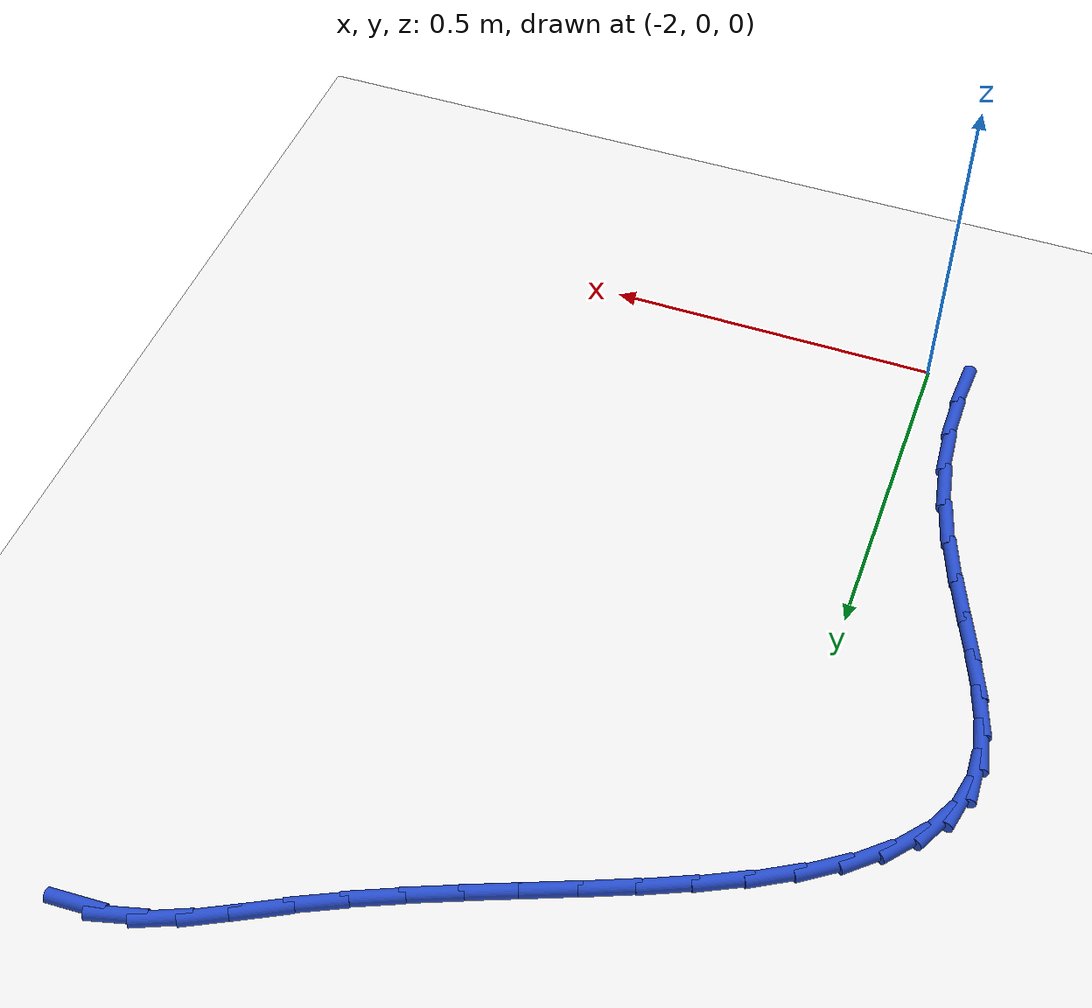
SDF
<sdf version="1.6">
 <world name="default">
  <model name="ground_plane">
   <static>1</static>
   <link name="link">
    <collision name="collision">
     <geometry><plane><normal>0 0 1</normal><size>100 100</size></plane></geometry>
     <surface><friction><ode><mu>100</mu><mu2>50</mu2></ode></friction></surface>
    </collision>
    <visual name="visual">
     <cast_shadows>0</cast_shadows>
     <geometry><plane><normal>0 0 1</normal><size>100 100</size></plane></geometry>
     <material>
      <script><uri>file://media/materials/scripts/gazebo.material</uri><name>Gazebo/WhiteGlow</name></script>
     </material>
    </visual>
   </link>
  </model>
  <model name="line">
   <link name="link_30">
    <pose>-1.2269145737048337 1.2487892684558908 0.01 0 1.57 0.05732866076477061</pose>
    <collision name="collision">
     <geometry><cylinder><radius>0.01</radius><length>0.08</length></cylinder></geometry>
    </collision>
    <visual name="visual">
     <material>
      <script><name>Gazebo/Blue</name><uri>file://media/materials/scripts/gazebo.material</uri></script>
     </material>
     <geometry><cylinder><radius>0.01</radius><length>0.08</length></cylinder></geometry>
    </visual>
   </link>
   <link name="link_31">
    <pose>-1.2802985207606725 1.2457254810731706 0.01 0 1.57 0.26910395399730286</pose>
    <collision name="collision">
     <geometry><cylinder><radius>0.01</radius><length>0.08</length></cylinder></geometry>
    </collision>
    <visual name="visual">
     <material>
      <script><name>Gazebo/Blue</name><uri>file://media/materials/scripts/gazebo.material</uri></script>
     </material>
     <geometry><cylinder><radius>0.01</radius><length>0.08</length></cylinder></geometry>
    </visual>
   </link>
   <link name="link_32">
    <pose>-1.3336327717868481 1.231016230854938 0.01 0 1.57 0.41300346229837676</pose>
    <collision name="collision">
     <geometry><cylinder><radius>0.01</radius><length>0.08</length></cylinder></geometry>
    </collision>
    <visual name="visual">
     <material>
      <script><name>Gazebo/Blue</name><uri>file://media/materials/scripts/gazebo.material</uri></script>
     </material>
     <geometry><cylinder><radius>0.01</radius><length>0.08</length></cylinder></geometry>
    </visual>
   </link>
   <link name="link_33">
    <pose>-1.3877844879776056 1.2072865853534835 0.01 0 1.57 0.48141193044094316</pose>
    <collision name="collision">
     <geometry><cylinder><radius>0.01</radius><length>0.08</length></cylinder></geometry>
    </collision>
    <visual name="visual">
     <material>
      <script><name>Gazebo/Blue</name><uri>file://media/materials/scripts/gazebo.material</uri></script>
     </material>
     <geometry><cylinder><radius>0.01</radius><length>0.08</length></cylinder></geometry>
    </visual>
   </link>
   <link name="link_34">
    <pose>-1.4438005196532282 1.1780234306486186 0.01 0 1.57 0.48839619299346027</pose>
    <collision name="collision">
     <geometry><cylinder><radius>0.01</radius><length>0.08</length></cylinder></geometry>
    </collision>
    <visual name="visual">
     <material>
      <script><name>Gazebo/Blue</name><uri>file://media/materials/scripts/gazebo.material</uri></script>
     </material>
     <geometry><cylinder><radius>0.01</radius><length>0.08</length></cylinder></geometry>
    </visual>
   </link>
   <link name="link_35">
    <pose>-1.5027277173468385 1.1467136538409626 0.01 0 1.57 0.45230389633374424</pose>
    <collision name="collision">
     <geometry><cylinder><radius>0.01</radius><length>0.08</length></cylinder></geometry>
    </collision>
    <visual name="visual">
     <material>
      <script><name>Gazebo/Blue</name><uri>file://media/materials/scripts/gazebo.material</uri></script>
     </material>
     <geometry><cylinder><radius>0.01</radius><length>0.08</length></cylinder></geometry>
    </visual>
   </link>
   <link name="link_36">
    <pose>-1.5653066440749752 1.1163065702985682 0.01 0 1.57 0.4184415488278547</pose>
    <collision name="collision">
     <geometry><cylinder><radius>0.01</radius><length>0.08</length></cylinder></geometry>
    </collision>
    <visual name="visual">
     <material>
      <script><name>Gazebo/Blue</name><uri>file://media/materials/scripts/gazebo.material</uri></script>
     </material>
     <geometry><cylinder><radius>0.01</radius><length>0.08</length></cylinder></geometry>
    </visual>
   </link>
   <link name="link_37">
    <pose>-1.6308107767704272 1.0871765814110361 0.01 0 1.57 0.3975980474690514</pose>
    <collision name="collision">
     <geometry><cylinder><radius>0.01</radius><length>0.08</length></cylinder></geometry>
    </collision>
    <visual name="visual">
     <material>
      <script><name>Gazebo/Blue</name><uri>file://media/materials/scripts/gazebo.material</uri></script>
     </material>
     <geometry><cylinder><radius>0.01</radius><length>0.08</length></cylinder></geometry>
    </visual>
   </link>
   <link name="link_38">
    <pose>-1.6980748488820894 1.0589280405509232 0.01 0 1.57 0.3883504754166668</pose>
    <collision name="collision">
     <geometry><cylinder><radius>0.01</radius><length>0.08</length></cylinder></geometry>
    </collision>
    <visual name="visual">
     <material>
      <script><name>Gazebo/Blue</name><uri>file://media/materials/scripts/gazebo.material</uri></script>
     </material>
     <geometry><cylinder><radius>0.01</radius><length>0.08</length></cylinder></geometry>
    </visual>
   </link>
   <link name="link_39">
    <pose>-1.7659335144301365 1.0311651616837485 0.01 0 1.57 0.3901776633378086</pose>
    <collision name="collision">
     <geometry><cylinder><radius>0.01</radius><length>0.08</length></cylinder></geometry>
    </collision>
    <visual name="visual">
     <material>
      <script><name>Gazebo/Blue</name><uri>file://media/materials/scripts/gazebo.material</uri></script>
     </material>
     <geometry><cylinder><radius>0.01</radius><length>0.08</length></cylinder></geometry>
    </visual>
   </link>
   <link name="link_40">
    <pose>-1.8332214274347414 1.003492158775032 0.01 0 1.57 0.40341232277559597</pose>
    <collision name="collision">
     <geometry><cylinder><radius>0.01</radius><length>0.08</length></cylinder></geometry>
    </collision>
    <visual name="visual">
     <material>
      <script><name>Gazebo/Blue</name><uri>file://media/materials/scripts/gazebo.material</uri></script>
     </material>
     <geometry><cylinder><radius>0.01</radius><length>0.08</length></cylinder></geometry>
    </visual>
   </link>
   <link name="link_41">
    <pose>-1.89877324191608 0.9755132457902925 0.01 0 1.57 0.42931180720907325</pose>
    <collision name="collision">
     <geometry><cylinder><radius>0.01</radius><length>0.08</length></cylinder></geometry>
    </collision>
    <visual name="visual">
     <material>
      <script><name>Gazebo/Blue</name><uri>file://media/materials/scripts/gazebo.material</uri></script>
     </material>
     <geometry><cylinder><radius>0.01</radius><length>0.08</length></cylinder></geometry>
    </visual>
   </link>
   <link name="link_42">
    <pose>-1.9614236118943258 0.9468326366950504 0.01 0 1.57 0.47026632434651217</pose>
    <collision name="collision">
     <geometry><cylinder><radius>0.01</radius><length>0.08</length></cylinder></geometry>
    </collision>
    <visual name="visual">
     <material>
      <script><name>Gazebo/Blue</name><uri>file://media/materials/scripts/gazebo.material</uri></script>
     </material>
     <geometry><cylinder><radius>0.01</radius><length>0.08</length></cylinder></geometry>
    </visual>
   </link>
   <link name="link_43">
    <pose>-2.020007191389654 0.9170545454548245 0.01 0 1.57 0.5301652108504594</pose>
    <collision name="collision">
     <geometry><cylinder><radius>0.01</radius><length>0.08</length></cylinder></geometry>
    </collision>
    <visual name="visual">
     <material>
      <script><name>Gazebo/Blue</name><uri>file://media/materials/scripts/gazebo.material</uri></script>
     </material>
     <geometry><cylinder><radius>0.01</radius><length>0.08</length></cylinder></geometry>
    </visual>
   </link>
   <link name="link_44">
    <pose>-2.0733586344222372 0.8857831860351344 0.01 0 1.57 0.6148966236918322</pose>
    <collision name="collision">
     <geometry><cylinder><radius>0.01</radius><length>0.08</length></cylinder></geometry>
    </collision>
    <visual name="visual">
     <material>
      <script><name>Gazebo/Blue</name><uri>file://media/materials/scripts/gazebo.material</uri></script>
     </material>
     <geometry><cylinder><radius>0.01</radius><length>0.08</length></cylinder></geometry>
    </visual>
   </link>
   <link name="link_45">
    <pose>-2.1203125950122517 0.8526227724014999 0.01 0 1.57 0.7327202092038974</pose>
    <collision name="collision">
     <geometry><cylinder><radius>0.01</radius><length>0.08</length></cylinder></geometry>
    </collision>
    <visual name="visual">
     <material>
      <script><name>Gazebo/Blue</name><uri>file://media/materials/scripts/gazebo.material</uri></script>
     </material>
     <geometry><cylinder><radius>0.01</radius><length>0.08</length></cylinder></geometry>
    </visual>
   </link>
   <link name="link_46">
    <pose>-2.1597037271798705 0.8171775185194404 0.01 0 1.57 0.8934658060357494</pose>
    <collision name="collision">
     <geometry><cylinder><radius>0.01</radius><length>0.08</length></cylinder></geometry>
    </collision>
    <visual name="visual">
     <material>
      <script><name>Gazebo/Blue</name><uri>file://media/materials/scripts/gazebo.material</uri></script>
     </material>
     <geometry><cylinder><radius>0.01</radius><length>0.08</length></cylinder></geometry>
    </visual>
   </link>
   <link name="link_47">
    <pose>-2.190366684945269 0.779051638354475 0.01 0 1.57 1.1038864519380231</pose>
    <collision name="collision">
     <geometry><cylinder><radius>0.01</radius><length>0.08</length></cylinder></geometry>
    </collision>
    <visual name="visual">
     <material>
      <script><name>Gazebo/Blue</name><uri>file://media/materials/scripts/gazebo.material</uri></script>
     </material>
     <geometry><cylinder><radius>0.01</radius><length>0.08</length></cylinder></geometry>
    </visual>
   </link>
   <link name="link_48">
    <pose>-2.211136122328621 0.7378493458721235 0.01 0 1.57 1.3567133856110043</pose>
    <collision name="collision">
     <geometry><cylinder><radius>0.01</radius><length>0.08</length></cylinder></geometry>
    </collision>
    <visual name="visual">
     <material>
      <script><name>Gazebo/Blue</name><uri>file://media/materials/scripts/gazebo.material</uri></script>
     </material>
     <geometry><cylinder><radius>0.01</radius><length>0.08</length></cylinder></geometry>
    </visual>
   </link>
   <link name="link_49">
    <pose>-2.2208489125476736 0.6931753010024975 0.01 0 1.57 -1.537328238258487</pose>
    <collision name="collision">
     <geometry><cylinder><radius>0.01</radius><length>0.08</length></cylinder></geometry>
    </collision>
    <visual name="visual">
     <material>
      <script><name>Gazebo/Blue</name><uri>file://media/materials/scripts/gazebo.material</uri></script>
     </material>
     <geometry><cylinder><radius>0.01</radius><length>0.08</length></cylinder></geometry>
    </visual>
   </link>
   <link name="link_50">
    <pose>-2.2192296997044827 0.6448125679713597 0.01 0 1.57 -1.3618809338009645</pose>
    <collision name="collision">
     <geometry><cylinder><radius>0.01</radius><length>0.08</length></cylinder></geometry>
    </collision>
    <visual name="visual">
     <material>
      <script><name>Gazebo/Blue</name><uri>file://media/materials/scripts/gazebo.material</uri></script>
     </material>
     <geometry><cylinder><radius>0.01</radius><length>0.08</length></cylinder></geometry>
    </visual>
   </link>
   <link name="link_51">
    <pose>-2.208243810521732 0.5929944931795035 0.01 0 1.57 -1.2537057726174012</pose>
    <collision name="collision">
     <geometry><cylinder><radius>0.01</radius><length>0.08</length></cylinder></geometry>
    </collision>
    <visual name="visual">
     <material>
      <script><name>Gazebo/Blue</name><uri>file://media/materials/scripts/gazebo.material</uri></script>
     </material>
     <geometry><cylinder><radius>0.01</radius><length>0.08</length></cylinder></geometry>
    </visual>
   </link>
   <link name="link_52">
    <pose>-2.1902046184227415 0.5380243656532105 0.01 0 1.57 -1.1954958206478574</pose>
    <collision name="collision">
     <geometry><cylinder><radius>0.01</radius><length>0.08</length></cylinder></geometry>
    </collision>
    <visual name="visual">
     <material>
      <script><name>Gazebo/Blue</name><uri>file://media/materials/scripts/gazebo.material</uri></script>
     </material>
     <geometry><cylinder><radius>0.01</radius><length>0.08</length></cylinder></geometry>
    </visual>
   </link>
   <link name="link_53">
    <pose>-2.1674254968308326 0.4802054744187626 0.01 0 1.57 -1.1752452098705417</pose>
    <collision name="collision">
     <geometry><cylinder><radius>0.01</radius><length>0.08</length></cylinder></geometry>
    </collision>
    <visual name="visual">
     <material>
      <script><name>Gazebo/Blue</name><uri>file://media/materials/scripts/gazebo.material</uri></script>
     </material>
     <geometry><cylinder><radius>0.01</radius><length>0.08</length></cylinder></geometry>
    </visual>
   </link>
   <link name="link_54">
    <pose>-2.142219819169324 0.4198411085024407 0.01 0 1.57 -1.1864920286634795</pose>
    <collision name="collision">
     <geometry><cylinder><radius>0.01</radius><length>0.08</length></cylinder></geometry>
    </collision>
    <visual name="visual">
     <material>
      <script><name>Gazebo/Blue</name><uri>file://media/materials/scripts/gazebo.material</uri></script>
     </material>
     <geometry><cylinder><radius>0.01</radius><length>0.08</length></cylinder></geometry>
    </visual>
   </link>
   <link name="link_55">
    <pose>-2.116900958861536 0.3572345569305275 0.01 0 1.57 -1.2268558783153807</pose>
    <collision name="collision">
     <geometry><cylinder><radius>0.01</radius><length>0.08</length></cylinder></geometry>
    </collision>
    <visual name="visual">
     <material>
      <script><name>Gazebo/Blue</name><uri>file://media/materials/scripts/gazebo.material</uri></script>
     </material>
     <geometry><cylinder><radius>0.01</radius><length>0.08</length></cylinder></geometry>
    </visual>
   </link>
   <link name="link_56">
    <pose>-2.09378228933079 0.2926891087293039 0.01 0 1.57 -1.2967453324569067</pose>
    <collision name="collision">
     <geometry><cylinder><radius>0.01</radius><length>0.08</length></cylinder></geometry>
    </collision>
    <visual name="visual">
     <material>
      <script><name>Gazebo/Blue</name><uri>file://media/materials/scripts/gazebo.material</uri></script>
     </material>
     <geometry><cylinder><radius>0.01</radius><length>0.08</length></cylinder></geometry>
    </visual>
   </link>
   <link name="link_57">
    <pose>-2.0751771840004047 0.2265080529250526 0.01 0 1.57 -1.3946803140391402</pose>
    <collision name="collision">
     <geometry><cylinder><radius>0.01</radius><length>0.08</length></cylinder></geometry>
    </collision>
    <visual name="visual">
     <material>
      <script><name>Gazebo/Blue</name><uri>file://media/materials/scripts/gazebo.material</uri></script>
     </material>
     <geometry><cylinder><radius>0.01</radius><length>0.08</length></cylinder></geometry>
    </visual>
   </link>
   <link name="link_58">
    <pose>-2.0631646239299304 0.15900649499236866 0.01 0 1.57 -1.490704835329298</pose>
    <collision name="collision">
     <geometry><cylinder><radius>0.01</radius><length>0.08</length></cylinder></geometry>
    </collision>
    <visual name="visual">
     <material>
      <script><name>Gazebo/Blue</name><uri>file://media/materials/scripts/gazebo.material</uri></script>
     </material>
     <geometry><cylinder><radius>0.01</radius><length>0.08</length></cylinder></geometry>
    </visual>
   </link>
   <link name="link_59">
    <pose>-2.0576747325258458 0.09060787100580864 0.01 0 1.57 -1.5680149515387967</pose>
    <collision name="collision">
     <geometry><cylinder><radius>0.01</radius><length>0.08</length></cylinder></geometry>
    </collision>
    <visual name="visual">
     <material>
      <script><name>Gazebo/Blue</name><uri>file://media/materials/scripts/gazebo.material</uri></script>
     </material>
     <geometry><cylinder><radius>0.01</radius><length>0.08</length></cylinder></geometry>
    </visual>
   </link>
   <link name="link_60">
    <pose>-2.057483334302506 0.02179380883840948 0.01 0 1.57 1.5145356721833476</pose>
    <collision name="collision">
     <geometry><cylinder><radius>0.01</radius><length>0.08</length></cylinder></geometry>
    </collision>
    <visual name="visual">
     <material>
      <script><name>Gazebo/Blue</name><uri>file://media/materials/scripts/gazebo.material</uri></script>
     </material>
     <geometry><cylinder><radius>0.01</radius><length>0.08</length></cylinder></geometry>
    </visual>
   </link>
  </model>
 </world>
</sdf>
